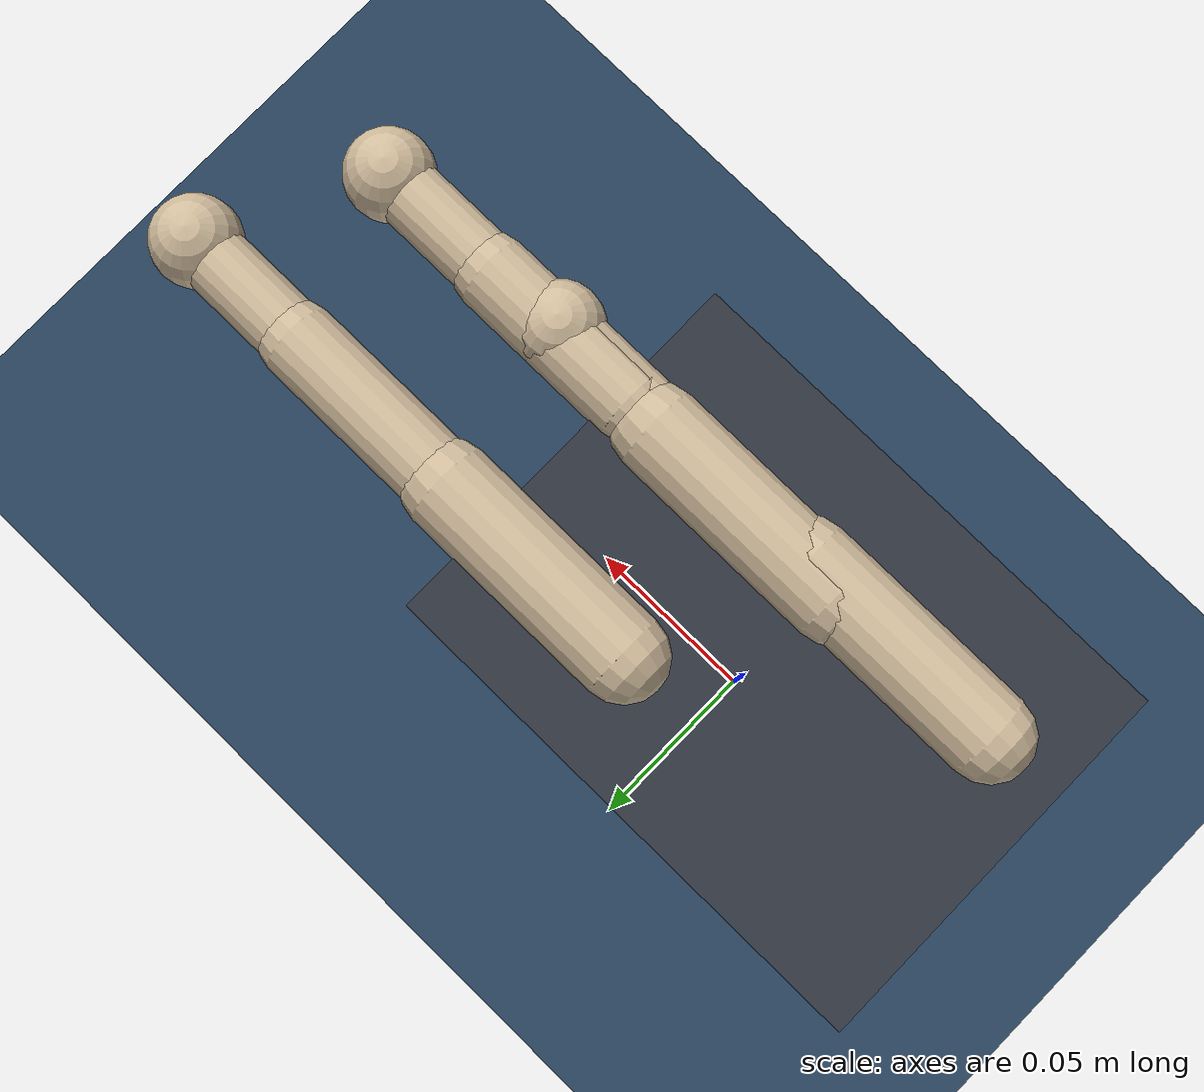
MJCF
<mujoco model="scene_cube_tn0d0117p0d0102p0d0000_ip0d0216n0d0083p0d0034_mn0d0008p0d0137p0d0071">
  <compiler angle="radian" autolimits="true" />
  <option timestep="0.002" gravity="0 0 -9.81" integrator="implicitfast" />
  <visual>
    <headlight ambient=".4 .4 .4" diffuse=".8 .8 .8" specular="0.1 0.1 0.1" />
    <map znear=".01" />
    <quality shadowsize="2048" />
    <global elevation="-15" />
  </visual>
  <default>
    <geom friction="1.8 0.15 0.01" solref="0.006 1" solimp="0.97 0.995 0.0005" />
    <motor ctrlrange="-1 1" ctrllimited="true" />
    <default class="pose">
      <joint damping="2.0" armature="0.01" />
      <position kp="4000" kv="100" forcerange="-1000 1000" />
    </default>
    <default class="ctrl">
      <joint damping="0.5" armature="0.001" />
      <position kp="30" kv="0.5" gear="1" forcerange="-10 10" ctrlrange="-1 1" />
    </default>
  </default>
  <asset>
    <texture type="skybox" builtin="gradient" rgb1="0.3 0.5 0.7" rgb2="0 0 0" width="512" height="3072" />
    <texture type="2d" name="groundplane" builtin="checker" mark="edge" rgb1="0.2 0.3 0.4" rgb2="0.1 0.2 0.3" markrgb="0.8 0.8 0.8" width="300" height="300" />
    <material name="groundplane" texture="groundplane" texuniform="true" texrepeat="5 5" reflectance="0.2" />
    <texture name="grid" type="2d" builtin="checker" rgb1="0.15 0.15 0.15" rgb2="0.25 0.25 0.25" width="256" height="256" />
    <material name="table_mat" texture="grid" texrepeat="3 3" reflectance="0.2" />
    <material name="palm_mat" rgba="0.18 0.2 0.24 1" />
    <material name="finger_mat" rgba="0.8 0.72 0.6 1" />
    <material name="object_mat" rgba="0.18 0.5 0.9 1" />
  </asset>
  <worldbody>
    <light pos="0 0 1.5" dir="0 0 -1" directional="true" diffuse=".6 .6 .6" specular=".2 .2 .2" />
    <light pos="0.5 0.5 1.0" dir="-1 -1 -1" directional="true" diffuse=".4 .4 .4" specular=".1 .1 .1" />
    <geom name="floor" type="plane" size="1.5 1.5 0.1" material="groundplane" />
    <body name="cube" pos="0.000000 0.000000 0.020000">
      <freejoint />
      <geom type="box" size="0.020000 0.020000 0.020000" density="500" material="object_mat" friction="2.4 0.2 0.02" />
    </body>
    <body gravcomp="1" name="palm_pose" pos="0 0 0.134">
      <joint class="pose" name="palm_px" type="slide" axis="1 0 0" range="-0.20 0.20" />
      <joint class="pose" name="palm_py" type="slide" axis="0 1 0" range="-0.20 0.20" />
      <joint class="pose" name="palm_pz" type="slide" axis="0 0 1" range="-0.15 0.35" />
      <joint class="pose" name="palm_rx" type="hinge" axis="1 0 0" range="-1.57 1.57" />
      <joint class="pose" name="palm_ry" type="hinge" axis="0 1 0" range="-1.57 1.57" />
      <joint class="pose" name="palm_rz" type="hinge" axis="0 0 1" range="-3.14 3.14" />
      <geom type="box" size="0.06 0.045 0.001" material="palm_mat" />
      <body name="thumb_mount" pos="-0.041722 -0.01775 0">
        <inertial pos="0 0 0" mass="0.001" diaginertia="1e-6 1e-6 1e-6" />
        <body name="thumb_yaw_frame">
          <inertial pos="0 0 0" mass="0.001" diaginertia="1e-6 1e-6 1e-6" />
          <joint class="ctrl" name="thumb_yaw" type="hinge" axis="1 0 0" range="-1.1 1.1" />
          <body name="thumb_mcp_frame">
            <joint class="ctrl" name="thumb_mcp" type="hinge" axis="0 1 0" range="0 3.14" />
            <geom type="capsule" fromto="0 0 0 0.05 0 0" size="0.010" material="finger_mat" />
            <body name="thumb_len_frame" pos="0.05 0 0">
              <geom type="capsule" fromto="0 0 0 0.04 0 0" size="0.0085" material="finger_mat" />
              <body name="thumb_pip_frame" pos="0.04 0 0">
                <joint class="ctrl" name="thumb_pip" type="hinge" axis="0 1 0" range="-1.2 0.5" />
                <geom type="capsule" fromto="0 0 0 0.03 0 0" size="0.0075" material="finger_mat" />
                <body name="thumb_tip" pos="0.03 0 0">
                  <geom type="sphere" size="0.010" material="finger_mat" friction="2.4 0.2 0.02" />
                  <geom type="sphere" pos="0 0.004 0" size="0.005" material="finger_mat" friction="2.4 0.2 0.02" />
                  <geom type="sphere" pos="0 -0.004 0" size="0.005" material="finger_mat" friction="2.4 0.2 0.02" />
                </body>
              </body>
            </body>
          </body>
        </body>
      </body>
      <body name="index_mount" pos="0.021571 0.021718 0">
        <inertial pos="0 0 0" mass="0.001" diaginertia="1e-6 1e-6 1e-6" />
        <body name="index_yaw_frame">
          <inertial pos="0 0 0" mass="0.001" diaginertia="1e-6 1e-6 1e-6" />
          <joint class="ctrl" name="index_yaw" type="hinge" axis="1 0 0" range="-1.1 1.1" />
          <body name="index_mcp_frame">
            <joint class="ctrl" name="index_mcp" type="hinge" axis="0 1 0" range="0 2.5" />
            <geom type="capsule" fromto="0 0 0 0.05 0 0" size="0.010" material="finger_mat" />
            <body name="index_len_frame" pos="0.053362 0 0">
              <geom type="capsule" fromto="0 0 0 0.04 0 0" size="0.0085" material="finger_mat" />
              <body name="index_pip_frame" pos="0.04 0 0">
                <joint class="ctrl" name="index_pip" type="hinge" axis="0 1 0" range="-1.2 1.57" />
                <geom type="capsule" fromto="0 0 0 0.03 0 0" size="0.0075" material="finger_mat" />
                <body name="index_tip" pos="0.03 0 0">
                  <geom type="sphere" size="0.010" material="finger_mat" friction="2.4 0.2 0.02" />
                  <geom type="sphere" pos="0 0.004 0" size="0.005" material="finger_mat" friction="2.4 0.2 0.02" />
                  <geom type="sphere" pos="0 -0.004 0" size="0.005" material="finger_mat" friction="2.4 0.2 0.02" />
                </body>
              </body>
            </body>
          </body>
        </body>
      </body>
      <body name="middle_mount" pos="-0.000803 -0.016259 0">
        <inertial pos="0 0 0" mass="0.001" diaginertia="1e-6 1e-6 1e-6" />
        <body name="middle_yaw_frame">
          <inertial pos="0 0 0" mass="0.001" diaginertia="1e-6 1e-6 1e-6" />
          <joint class="ctrl" name="middle_yaw" type="hinge" axis="1 0 0" range="-1.1 1.1" />
          <body name="middle_mcp_frame">
            <joint class="ctrl" name="middle_mcp" type="hinge" axis="0 1 0" range="0 2.5" />
            <geom type="capsule" fromto="0 0 0 0.05 0 0" size="0.010" material="finger_mat" />
            <body name="middle_len_frame" pos="0.05712 0 0">
              <geom type="capsule" fromto="0 0 0 0.04 0 0" size="0.0085" material="finger_mat" />
              <body name="middle_pip_frame" pos="0.04 0 0">
                <joint class="ctrl" name="middle_pip" type="hinge" axis="0 1 0" range="-1.2 1.57" />
                <geom type="capsule" fromto="0 0 0 0.03 0 0" size="0.0075" material="finger_mat" />
                <body name="middle_tip" pos="0.03 0 0">
                  <geom type="sphere" size="0.010" material="finger_mat" friction="2.4 0.2 0.02" />
                  <geom type="sphere" pos="0 0.004 0" size="0.005" material="finger_mat" friction="2.4 0.2 0.02" />
                  <geom type="sphere" pos="0 -0.004 0" size="0.005" material="finger_mat" friction="2.4 0.2 0.02" />
                </body>
              </body>
            </body>
          </body>
        </body>
      </body>
    </body>
  </worldbody>
  <actuator>
    <position class="pose" name="a_palm_px" joint="palm_px" ctrlrange="-0.20 0.20" />
    <position class="pose" name="a_palm_py" joint="palm_py" ctrlrange="-0.20 0.20" />
    <position class="pose" name="a_palm_pz" joint="palm_pz" ctrlrange="-0.15 0.35" />
    <position class="pose" name="a_palm_rx" joint="palm_rx" ctrlrange="-1.57 1.57" />
    <position class="pose" name="a_palm_ry" joint="palm_ry" ctrlrange="-1.57 1.57" />
    <position class="pose" name="a_palm_rz" joint="palm_rz" ctrlrange="-3.14 3.14" />
    <position class="ctrl" name="a_thumb_yaw" joint="thumb_yaw" ctrlrange="-1.1 1.1" />
    <position class="ctrl" name="a_thumb_mcp" joint="thumb_mcp" ctrlrange="0 3.14" />
    <position class="ctrl" name="a_thumb_pip" joint="thumb_pip" ctrlrange="-1.2 0.5" />
    <position class="ctrl" name="a_index_yaw" joint="index_yaw" ctrlrange="-1.1 1.1" />
    <position class="ctrl" name="a_index_mcp" joint="index_mcp" ctrlrange="0 2.5" />
    <position class="ctrl" name="a_index_pip" joint="index_pip" ctrlrange="-1.2 1.57" />
    <position class="ctrl" name="a_middle_yaw" joint="middle_yaw" ctrlrange="-1.1 1.1" />
    <position class="ctrl" name="a_middle_mcp" joint="middle_mcp" ctrlrange="0 2.5" />
    <position class="ctrl" name="a_middle_pip" joint="middle_pip" ctrlrange="-1.2 1.57" />
  </actuator>
  <keyframe>
    <key name="open" qpos="&#10;        0 0 0.02 1 0 0 0 0.02 0 0 0 0 0 0 2 -0.707 0 1.25 1 0 1.25 1&#10;      " ctrl="&#10;        0.02 0 0 0 0 0 0 2 -0.707 0 1.25 1 0 1.25 1&#10;      " />
    <key name="foundational" qpos="&#10;        0.007542595145 -0.01244766046 0.02462275572 0.8113273913 -0.0733508223 0.1092679931 0.5695858379 0.02066294415 -0.0001138526802 0.0001131034304 -1.185317405e-05 -8.666021726e-05 -1.270234178e-05 -0.2012640191 1.489571646 -0.9010828649 -0.01334195518 1.487504196 1.020147822 0.1758787964 1.275688683 0.845356699&#10;      " ctrl="&#10;        0.02 0 0 0 0 0 0.05678979513 1.267608426 -0.9349968108 -0.1303668348 1.483370655 1.011268844 0.05156688664 1.511808353 0.9140770811&#10;      " />
  </keyframe>
</mujoco>
